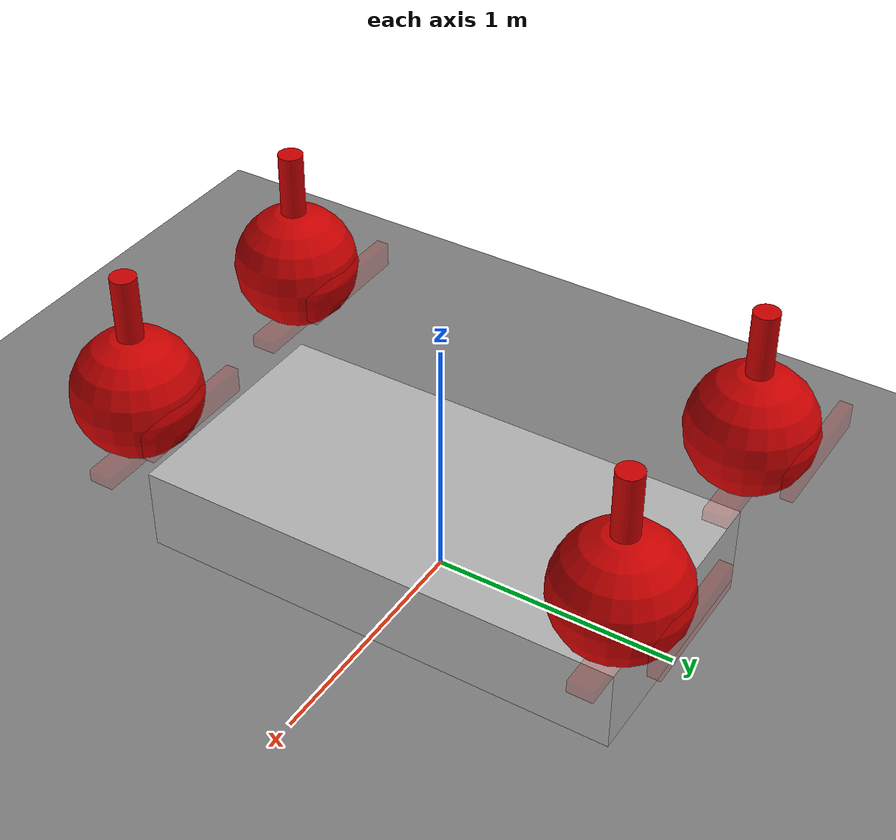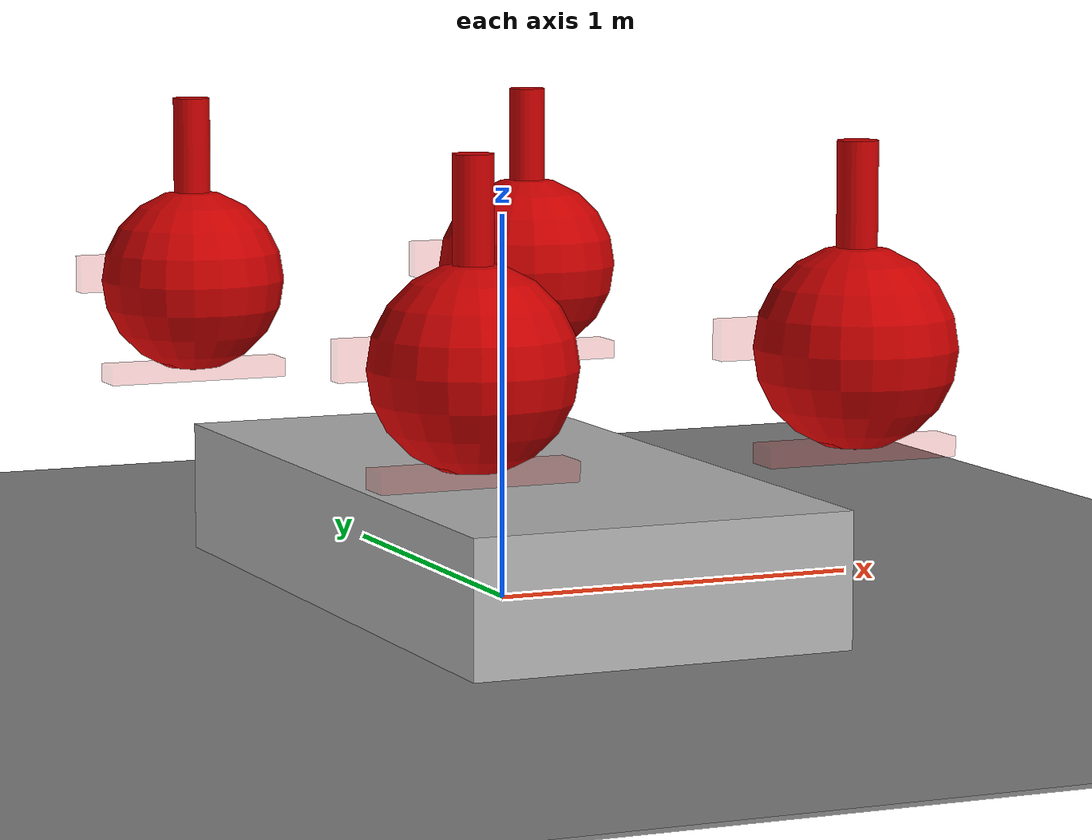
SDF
<?xml version="1.0" ?>
<sdf version="1.10">
  <model name="subpar_drone">
    <pose>0 0 0 0 0 0</pose>

    <include>
      <uri>file:///workspaces/TI-S4-Subpar/subpar/simulator/models/ground_plane.sdf</uri>
      <name>ground</name>
      <pose>0 0 0 0 0 0</pose>
    </include>
    <include>
      <uri>file:///workspaces/TI-S4-Subpar/subpar/simulator/models/subpar_drone/motors/motor_module_1.sdf</uri>
      <name>motor_module_1</name>
      <pose>0.5 1 0.5 0 0 0</pose>
    </include>

    <include>
      <uri>file:///workspaces/TI-S4-Subpar/subpar/simulator/models/subpar_drone/motors/motor_module_2.sdf</uri>
      <name>motor_module_2</name>
      <pose>-0.5 1 0.5 0 0 0</pose>
    </include>

    <include>
      <uri>file:///workspaces/TI-S4-Subpar/subpar/simulator/models/subpar_drone/motors/motor_module_3.sdf</uri>
      <name>motor_module_3</name>
      <pose>0.5 -1 0.5 0 0 0</pose>
    </include>

    <include>
      <uri>file:///workspaces/TI-S4-Subpar/subpar/simulator/models/subpar_drone/motors/motor_module_4.sdf</uri>
      <name>motor_module_4</name>
      <pose>-0.5 -1 0.5 0 0 0</pose>
    </include>

    <include>
      <uri>file:///workspaces/TI-S4-Subpar/subpar/simulator/models/subpar_drone/body.sdf</uri>
      <name>body</name>
      <pose>0 0 .1 0 0 0</pose>
    </include>

    <joint name="motor_joint_1" type="fixed">
        <pose>0 0 0 0 0 0</pose>
        <parent>body</parent>
        <child>motor_module_1</child>
      </joint>

    <joint name="motor_joint_j2" type="fixed">
        <pose>0 0 0 0 0 0</pose>
        <parent>body</parent>
        <child>motor_module_2</child>
      </joint>

    <joint name="motor_joint_j3" type="fixed">
        <pose>0 0 0 0 0 0</pose>
        <parent>body</parent>
        <child>motor_module_3</child>
      </joint>

    <joint name="motor_joint_j4" type="fixed">
        <pose>0 0 0 0 0 0</pose>
        <parent>body</parent>
        <child>motor_module_4</child>
      </joint>
<plugin name="subpar::SubparPublisherPlugin" filename="/workspaces/TI-S4-Subpar/subpar/simulator/build/libSubparDronePlugin.so"/>
<plugin filename="gz-sim-imu-system"
        name="gz::sim::systems::Imu">
</plugin>
  </model>
</sdf>

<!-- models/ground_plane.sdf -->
<sdf version="1.10">
  <model name="ground_plane">
    <static>true</static>

    <link name="ground_link">
      <pose>0 0 0 0 0 0</pose>

      <!-- Visueel vlak -->
      <visual name="ground_visual">
        <geometry>
          <box>
            <size>100 100 0.01</size> <!-- groot maar dun -->
          </box>
        </geometry>
        <material>
          <ambient>0.3 0.3 0.3 1</ambient>
          <diffuse>0.5 0.5 0.5 1</diffuse>
        </material>
      </visual>

      <!-- Botsing voor fysica -->
      <collision name="ground_collision">
        <geometry>
          <box>
            <size>100 100 0.01</size>
          </box>
        </geometry>
        <surface>
          <friction>
            <ode>
              <mu>1.0</mu>
              <mu2>1.0</mu2>
            </ode>
          </friction>
        </surface>
      </collision>

      <!-- Massa en inertie irrelevant voor statisch vlak -->
      <inertial>
        <mass>1.0</mass>
      </inertial>
    </link>
  </model>
</sdf>

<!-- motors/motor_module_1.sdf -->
<sdf version="1.10">
    <model name="motor_module_1">
      <pose>0 0 0 0 0 0</pose>

        <link name="motor_module_1_base">
          <pose>0.0 0.0 0.0 0 0 0</pose>
          <inertial>
            <inertia>
              <ixx>2.501</ixx>
              <ixy>0</ixy>
              <ixz>0</ixz>
              <iyy>2.501</iyy>
              <iyz>0</iyz>
              <izz>5</izz>
            </inertia>
            <mass>0.1</mass>
          </inertial>
          <collision name="base_collision">
            <pose>0.0 0.0 0.0 0 0 0</pose>
            <geometry>
              <box>
                <size>0.5 0.5 0.01</size>
              </box>
            </geometry>
          </collision>
        </link>

        <link name="motor_module_1_pitch_rotor">
          <pose>0.0 0.0 0 0 0 0</pose>
          <inertial>
            <inertia>
              <ixx>0.032</ixx>
              <ixy>0</ixy>
              <ixz>0</ixz>
              <iyy>0.032</iyy>
              <iyz>0</iyz>
              <izz>0.00012</izz>
            </inertia>
            <mass>0.1</mass>
          </inertial>
          <visual name="visual">
            <geometry>
              <box>
                <size>0.5 0.1 0.05</size>
              </box>
            </geometry>
            <material>
              <ambient>0.2 0.8 0.2 1</ambient>
              <diffuse>0.8 0 0 1</diffuse>
            </material>
            <transparency>0.9</transparency>
          </visual>
          <collision name="collision">
            <geometry>
              <box>
                <size>0.5 0.1 0.05</size>
              </box>
            </geometry>
          </collision>
        </link>

        <link name="motor_module_1_yaw_rotor">
          <pose>0 0.25 0.25 1.5708 0 0</pose>
            <inertial>
              <mass>0.1</mass>
              <inertia>
                <ixx>0.05</ixx>
                <iyy>0.05</iyy>
                <izz>0.05</izz>
                <ixy>0</ixy><ixz>0</ixz><iyz>0</iyz>
              </inertia>
            </inertial>
          <visual name="visual">
          <geometry>
            <box>
              <size>0.5 0.1 0.05</size>
            </box>
          </geometry>
          <material>
            <ambient>0.2 0.8 0.2 1</ambient>
              <diffuse>0.8 0 0 1</diffuse>
            </material>
            <transparency>0.9</transparency>
          </visual>
          <collision name="collision_2">
            <geometry>
              <box>
                <size>0.5 0.1 0.05</size>
              </box>
            </geometry>
          </collision>
        </link>

        <link name="motor_module_1_thruster">
          <pose>0 0 0.25 0 0 0</pose>
            <inertial>
              <mass>0.1</mass>
              <inertia>
                <ixx>0.05</ixx>
                <iyy>0.05</iyy>
                <izz>0.05</izz>
                <ixy>0</ixy><ixz>0</ixz><iyz>0</iyz>
              </inertia>
            </inertial>
          <visual name="visual">
          <geometry>
            <sphere>
              <radius>0.25</radius>
            </sphere>
          </geometry>
          <material>
            <ambient>0.2 0.8 0.2 1</ambient>
            <diffuse>0.8 0 0 1</diffuse>
          </material>
          </visual>
          <collision name="collision_3">
            <geometry>
              <sphere>
                <radius>0.25</radius>
              </sphere>
            </geometry>
          </collision>
        </link>

        <link name="motor_module_1_thruster_direction_marker">
          <pose>0 0 0.5 0 0 0</pose>
            <inertial>
              <mass>0.1</mass>
              <inertia>
                <ixx>0.05</ixx>
                <iyy>0.05</iyy>
                <izz>0.05</izz>
                <ixy>0</ixy><ixz>0</ixz><iyz>0</iyz>
              </inertia>
            </inertial>
          <visual name="visual">
            <geometry>
              <cylinder>
                <radius>0.05</radius>
                <length>0.5</length>
              </cylinder>
            </geometry>
            <material>
              <ambient>0.2 0.8 0.2 1</ambient>
              <diffuse>0.8 0 0 1</diffuse>
            </material>
          </visual>
          <collision name="collision_4">
            <geometry>
              <cylinder>
                <radius>0.05</radius>
                <length>0.5</length>
              </cylinder>
            </geometry>
          </collision>
        </link>

        <joint name="motor_module_1_joint_1" type="revolute">
          <pose>0 0 0 0 0 0</pose>
          <parent>motor_module_1_base</parent>
          <child>motor_module_1_pitch_rotor</child>
          <axis>
            <xyz>0 0 1</xyz>
          </axis>
        </joint>

        <joint name="motor_module_1_joint_2" type="revolute">
          <pose>0 0 0 0 0 0</pose>
          <parent>motor_module_1_pitch_rotor</parent>
          <child>motor_module_1_yaw_rotor</child>
          <axis>
            <xyz> 0 0 1</xyz>
          </axis>
        </joint>

        <joint name="motor_module_1_joint_3" type="revolute">
          <pose>0 0 0 0 0 0</pose>
          <parent>motor_module_1_yaw_rotor</parent>
          <child>motor_module_1_thruster</child>
                    <axis>
      <xyz>0 0 -1</xyz>
    </axis>
        </joint>

        <joint name="motor_module_1_joint_4" type="revolute">
          <pose>0 0 0 0 0 0</pose>
          <parent>motor_module_1_thruster</parent>
          <child>motor_module_1_thruster_direction_marker</child>
          <axis>
      <xyz>0 0 -1</xyz>
    </axis>

        </joint>

        <plugin
          filename="gz-sim-joint-position-controller-system"
          name="gz::sim::systems::JointPositionController">
          <joint_name>motor_module_1_joint_1</joint_name>
          <topic>motor_module_1_joint_1</topic>
          <p_gain>1</p_gain>
          <i_gain>0.1</i_gain>
          <d_gain>0.5</d_gain>
          <i_max>1</i_max>
          <i_min>-1</i_min>
          <cmd_max>1000</cmd_max>
          <cmd_min>-1000</cmd_min>
        </plugin>

        <plugin
          filename="gz-sim-joint-position-controller-system"
          name="gz::sim::systems::JointPositionController">
          <joint_name>motor_module_1_joint_2</joint_name>
          <topic>motor_module_1_joint_2</topic>
          <p_gain>1</p_gain>
          <i_gain>0.1</i_gain>
          <d_gain>0.5</d_gain>
          <i_max>1</i_max>
          <i_min>-1</i_min>
          <cmd_max>1000</cmd_max>
          <cmd_min>-1000</cmd_min>
        </plugin>

<plugin
  filename="gz-sim-thruster-system"
  name="gz::sim::systems::Thruster">
  <namespace>motor_1_thruster</namespace>  <!-- Change number for each module -->
  <joint_name>motor_module_1_joint_4</joint_name>  <!-- Change number for each module -->
  <use_angvel_cmd>false</use_angvel_cmd>
  <input_topic>/model/motor_1_thruster/joint/motor_module_1_joint_4/cmd_thrust</input_topic>  <!-- ADD THIS LINE -->
  <thrust_coefficient>1</thrust_coefficient>
  <fluid_density>1000</fluid_density>
  <propeller_diameter>0.2</propeller_diameter>
</plugin>
    </model>
  </sdf>

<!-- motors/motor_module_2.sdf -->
<sdf version="1.10">
  <model name="motor_module_2">
    <pose>0 0 0 0 0 0</pose>

      <link name="motor_module_2_base">
        <pose>0.0 0.0 0.0 0 0 0</pose>
        <inertial>
          <inertia>
            <ixx>2.501</ixx>
            <ixy>0</ixy>
            <ixz>0</ixz>
            <iyy>2.501</iyy>
            <iyz>0</iyz>
            <izz>5</izz>
          </inertia>
          <mass>0.1</mass>
        </inertial>
        <collision name="base_collision">
          <pose>0.0 0.0 0.0 0 0 0</pose>
          <geometry>
            <box>
              <size>0.5 0.5 0.01</size>
            </box>
          </geometry>
        </collision>
      </link>

      <link name="motor_module_2_pitch_rotor">
        <pose>0.0 0.0 0 0 0 0</pose>
        <inertial>
          <inertia>
            <ixx>0.032</ixx>
            <ixy>0</ixy>
            <ixz>0</ixz>
            <iyy>0.032</iyy>
            <iyz>0</iyz>
            <izz>0.00012</izz>
          </inertia>
          <mass>0.1</mass>
        </inertial>
        <visual name="visual">
          <geometry>
            <box>
              <size>0.5 0.1 0.05</size>
            </box>
          </geometry>
          <material>
            <ambient>0.2 0.8 0.2 1</ambient>
            <diffuse>0.8 0 0 1</diffuse>
          </material>
          <transparency>0.9</transparency>
        </visual>
        <collision name="collision">
          <geometry>
            <box>
              <size>0.5 0.1 0.05</size>
            </box>
          </geometry>
        </collision>
      </link>

      <link name="motor_module_2_yaw_rotor">
        <pose>0 0.25 0.25 1.5708 0 0</pose>
          <inertial>
            <mass>0.1</mass>
            <inertia>
              <ixx>0.05</ixx>
              <iyy>0.05</iyy>
              <izz>0.05</izz>
              <ixy>0</ixy><ixz>0</ixz><iyz>0</iyz>
            </inertia>
          </inertial>
        <visual name="visual">
        <geometry>
          <box>
            <size>0.5 0.1 0.05</size>
          </box>
        </geometry>
        <material>
          <ambient>0.2 0.8 0.2 1</ambient>
            <diffuse>0.8 0 0 1</diffuse>
          </material>
          <transparency>0.9</transparency>
        </visual>
        <collision name="collision_2">
          <geometry>
            <box>
              <size>0.5 0.1 0.05</size>
            </box>
          </geometry>
        </collision>
      </link>

      <link name="motor_module_2_thruster">
        <pose>0 0 0.25 0 0 0</pose>
          <inertial>
            <mass>0.1</mass>
            <inertia>
              <ixx>0.05</ixx>
              <iyy>0.05</iyy>
              <izz>0.05</izz>
              <ixy>0</ixy><ixz>0</ixz><iyz>0</iyz>
            </inertia>
          </inertial>
        <visual name="visual">
        <geometry>
          <sphere>
            <radius>0.25</radius>
          </sphere>
        </geometry>
        <material>
          <ambient>0.2 0.8 0.2 1</ambient>
          <diffuse>0.8 0 0 1</diffuse>
        </material>
        </visual>
        <collision name="collision_3">
          <geometry>
            <sphere>
              <radius>0.25</radius>
            </sphere>
          </geometry>
        </collision>
      </link>

      <link name="motor_module_2_thruster_direction_marker">
        <pose>0 0 0.5 0 0 0</pose>
          <inertial>
            <mass>0.1</mass>
            <inertia>
              <ixx>0.05</ixx>
              <iyy>0.05</iyy>
              <izz>0.05</izz>
              <ixy>0</ixy><ixz>0</ixz><iyz>0</iyz>
            </inertia>
          </inertial>
        <visual name="visual">
          <geometry>
            <cylinder>
              <radius>0.05</radius>
              <length>0.5</length>
            </cylinder>
          </geometry>
          <material>
            <ambient>0.2 0.8 0.2 1</ambient>
            <diffuse>0.8 0 0 1</diffuse>
          </material>
        </visual>
        <collision name="collision_4">
          <geometry>
            <cylinder>
              <radius>0.05</radius>
              <length>0.5</length>
            </cylinder>
          </geometry>
        </collision>
      </link>

      <joint name="motor_module_2_joint_1" type="revolute">
        <pose>0 0 0 0 0 0</pose>
        <parent>motor_module_2_base</parent>
        <child>motor_module_2_pitch_rotor</child>
        <axis>
          <xyz>0 0 1</xyz>
        </axis>
      </joint>

      <joint name="motor_module_2_joint_2" type="revolute">
        <pose>0 0 0 0 0 0</pose>
        <parent>motor_module_2_pitch_rotor</parent>
        <child>motor_module_2_yaw_rotor</child>
        <axis>
          <xyz> 0 0 1</xyz>
        </axis>
      </joint>

      <joint name="motor_module_2_joint_3" type="fixed">
        <pose>0 0 0 0 0 0</pose>
        <parent>motor_module_2_yaw_rotor</parent>
        <child>motor_module_2_thruster</child>
      </joint>

      <joint name="motor_module_2_joint_4" type="revolute">
        <pose>0 0 0 0 0 0</pose>
        <parent>motor_module_2_thruster</parent>
        <child>motor_module_2_thruster_direction_marker</child>
        <axis>
    <xyz>0 0 -1</xyz>
    <limit>
      <lower>-1e16</lower>
      <upper>1e16</upper>
      <effort>1000</effort>
      <velocity>100</velocity>
    </limit>
  </axis>

      </joint>

      <plugin
        filename="gz-sim-joint-position-controller-system"
        name="gz::sim::systems::JointPositionController">
        <joint_name>motor_module_2_joint_1</joint_name>
        <topic>motor_module_2_joint_1</topic>
        <p_gain>1</p_gain>
        <i_gain>0.1</i_gain>
        <d_gain>0.5</d_gain>
        <i_max>1</i_max>
        <i_min>-1</i_min>
        <cmd_max>1000</cmd_max>
        <cmd_min>-1000</cmd_min>
      </plugin>

      <plugin
        filename="gz-sim-joint-position-controller-system"
        name="gz::sim::systems::JointPositionController">
        <joint_name>motor_module_2_joint_2</joint_name>
        <topic>motor_module_2_joint_2</topic>
        <p_gain>1</p_gain>
        <i_gain>0.1</i_gain>
        <d_gain>0.5</d_gain>
        <i_max>1</i_max>
        <i_min>-1</i_min>
        <cmd_max>1000</cmd_max>
        <cmd_min>-1000</cmd_min>
      </plugin>

<plugin
  filename="gz-sim-thruster-system"
  name="gz::sim::systems::Thruster">
  <namespace>motor_2_thruster</namespace>  <!-- Change number for each module -->
  <joint_name>motor_module_2_joint_4</joint_name>  <!-- Change number for each module -->
  <use_angvel_cmd>false</use_angvel_cmd>
  <input_topic>/model/motor_2_thruster/joint/motor_module_2_joint_4/cmd_thrust</input_topic>  <!-- ADD THIS LINE -->
  <thrust_coefficient>1</thrust_coefficient>
  <fluid_density>1000</fluid_density>
  <propeller_diameter>0.2</propeller_diameter>
</plugin>
  </model>
</sdf>

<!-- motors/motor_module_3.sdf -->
<sdf version="1.10">
  <model name="motor_module_3">
    <pose>0 0 0 0 0 0</pose>

      <link name="motor_module_3_base">
        <pose>0.0 0.0 0.0 0 0 0</pose>
        <inertial>
          <inertia>
            <ixx>2.501</ixx>
            <ixy>0</ixy>
            <ixz>0</ixz>
            <iyy>2.501</iyy>
            <iyz>0</iyz>
            <izz>5</izz>
          </inertia>
          <mass>0.1</mass>
        </inertial>
        <collision name="base_collision">
          <pose>0.0 0.0 0.0 0 0 0</pose>
          <geometry>
            <box>
              <size>0.5 0.5 0.01</size>
            </box>
          </geometry>
        </collision>
      </link>

      <link name="motor_module_3_pitch_rotor">
        <pose>0.0 0.0 0 0 0 0</pose>
        <inertial>
          <inertia>
            <ixx>0.032</ixx>
            <ixy>0</ixy>
            <ixz>0</ixz>
            <iyy>0.032</iyy>
            <iyz>0</iyz>
            <izz>0.00012</izz>
          </inertia>
          <mass>0.1</mass>
        </inertial>
        <visual name="visual">
          <geometry>
            <box>
              <size>0.5 0.1 0.05</size>
            </box>
          </geometry>
          <material>
            <ambient>0.2 0.8 0.2 1</ambient>
            <diffuse>0.8 0 0 1</diffuse>
          </material>
          <transparency>0.9</transparency>
        </visual>
        <collision name="collision">
          <geometry>
            <box>
              <size>0.5 0.1 0.05</size>
            </box>
          </geometry>
        </collision>
      </link>

      <link name="motor_module_3_yaw_rotor">
        <pose>0 0.25 0.25 1.5708 0 0</pose>
          <inertial>
            <mass>0.1</mass>
            <inertia>
              <ixx>0.05</ixx>
              <iyy>0.05</iyy>
              <izz>0.05</izz>
              <ixy>0</ixy><ixz>0</ixz><iyz>0</iyz>
            </inertia>
          </inertial>
        <visual name="visual">
        <geometry>
          <box>
            <size>0.5 0.1 0.05</size>
          </box>
        </geometry>
        <material>
          <ambient>0.2 0.8 0.2 1</ambient>
            <diffuse>0.8 0 0 1</diffuse>
          </material>
          <transparency>0.9</transparency>
        </visual>
        <collision name="collision_2">
          <geometry>
            <box>
              <size>0.5 0.1 0.05</size>
            </box>
          </geometry>
        </collision>
      </link>

      <link name="motor_module_3_thruster">
        <pose>0 0 0.25 0 0 0</pose>
          <inertial>
            <mass>0.1</mass>
            <inertia>
              <ixx>0.05</ixx>
              <iyy>0.05</iyy>
              <izz>0.05</izz>
              <ixy>0</ixy><ixz>0</ixz><iyz>0</iyz>
            </inertia>
          </inertial>
        <visual name="visual">
        <geometry>
          <sphere>
            <radius>0.25</radius>
          </sphere>
        </geometry>
        <material>
          <ambient>0.2 0.8 0.2 1</ambient>
          <diffuse>0.8 0 0 1</diffuse>
        </material>
        </visual>
        <collision name="collision_3">
          <geometry>
            <sphere>
              <radius>0.25</radius>
            </sphere>
          </geometry>
        </collision>
      </link>

      <link name="motor_module_3_thruster_direction_marker">
        <pose>0 0 0.5 0 0 0</pose>
          <inertial>
            <mass>0.1</mass>
            <inertia>
              <ixx>0.05</ixx>
              <iyy>0.05</iyy>
              <izz>0.05</izz>
              <ixy>0</ixy><ixz>0</ixz><iyz>0</iyz>
            </inertia>
          </inertial>
        <visual name="visual">
          <geometry>
            <cylinder>
              <radius>0.05</radius>
              <length>0.5</length>
            </cylinder>
          </geometry>
          <material>
            <ambient>0.2 0.8 0.2 1</ambient>
            <diffuse>0.8 0 0 1</diffuse>
          </material>
        </visual>
        <collision name="collision_4">
          <geometry>
            <cylinder>
              <radius>0.05</radius>
              <length>0.5</length>
            </cylinder>
          </geometry>
        </collision>
      </link>

      <joint name="motor_module_3_joint_1" type="revolute">
        <pose>0 0 0 0 0 0</pose>
        <parent>motor_module_3_base</parent>
        <child>motor_module_3_pitch_rotor</child>
        <axis>
          <xyz>0 0 1</xyz>
        </axis>
      </joint>

      <joint name="motor_module_3_joint_2" type="revolute">
        <pose>0 0 0 0 0 0</pose>
        <parent>motor_module_3_pitch_rotor</parent>
        <child>motor_module_3_yaw_rotor</child>
        <axis>
          <xyz> 0 0 1</xyz>
        </axis>
      </joint>

      <joint name="motor_module_3_joint_3" type="fixed">
        <pose>0 0 0 0 0 0</pose>
        <parent>motor_module_3_yaw_rotor</parent>
        <child>motor_module_3_thruster</child>
      </joint>

      <joint name="motor_module_3_joint_4" type="revolute">
        <pose>0 0 0 0 0 0</pose>
        <parent>motor_module_3_thruster</parent>
        <child>motor_module_3_thruster_direction_marker</child>
        <axis>
    <xyz>0 0 -1</xyz>
    <limit>
      <lower>-1e16</lower>
      <upper>1e16</upper>
      <effort>1000</effort>
      <velocity>100</velocity>
    </limit>
  </axis>

      </joint>

      <plugin
        filename="gz-sim-joint-position-controller-system"
        name="gz::sim::systems::JointPositionController">
        <joint_name>motor_module_3_joint_1</joint_name>
        <topic>motor_module_3_joint_1</topic>
        <p_gain>1</p_gain>
        <i_gain>0.1</i_gain>
        <d_gain>0.5</d_gain>
        <i_max>1</i_max>
        <i_min>-1</i_min>
        <cmd_max>1000</cmd_max>
        <cmd_min>-1000</cmd_min>
      </plugin>

      <plugin
        filename="gz-sim-joint-position-controller-system"
        name="gz::sim::systems::JointPositionController">
        <joint_name>motor_module_3_joint_2</joint_name>
        <topic>motor_module_3_joint_2</topic>
        <p_gain>1</p_gain>
        <i_gain>0.1</i_gain>
        <d_gain>0.5</d_gain>
        <i_max>1</i_max>
        <i_min>-1</i_min>
        <cmd_max>1000</cmd_max>
        <cmd_min>-1000</cmd_min>
      </plugin>

<plugin
  filename="gz-sim-thruster-system"
  name="gz::sim::systems::Thruster">
  <namespace>motor_3_thruster</namespace>  <!-- Change number for each module -->
  <joint_name>motor_module_3_joint_4</joint_name>  <!-- Change number for each module -->
  <use_angvel_cmd>false</use_angvel_cmd>
 <input_topic>/model/motor_3_thruster/joint/motor_module_3_joint_4/cmd_thrust</input_topic> <thrust_coefficient>1</thrust_coefficient>
  <fluid_density>1000</fluid_density>
  <propeller_diameter>0.2</propeller_diameter>
</plugin>
  </model>
</sdf>

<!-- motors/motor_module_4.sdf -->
<sdf version="1.10">
  <model name="motor_module_4">
    <pose>0 0 0 0 0 0</pose>

      <link name="motor_module_4_base">
        <pose>0.0 0.0 0.0 0 0 0</pose>
        <inertial>
          <inertia>
            <ixx>2.501</ixx>
            <ixy>0</ixy>
            <ixz>0</ixz>
            <iyy>2.501</iyy>
            <iyz>0</iyz>
            <izz>5</izz>
          </inertia>
          <mass>0.1</mass>
        </inertial>
        <collision name="base_collision">
          <pose>0.0 0.0 0.0 0 0 0</pose>
          <geometry>
            <box>
              <size>0.5 0.5 0.01</size>
            </box>
          </geometry>
        </collision>
      </link>

      <link name="motor_module_4_pitch_rotor">
        <pose>0.0 0.0 0 0 0 0</pose>
        <inertial>
          <inertia>
            <ixx>0.032</ixx>
            <ixy>0</ixy>
            <ixz>0</ixz>
            <iyy>0.032</iyy>
            <iyz>0</iyz>
            <izz>0.00012</izz>
          </inertia>
          <mass>0.1</mass>
        </inertial>
        <visual name="visual">
          <geometry>
            <box>
              <size>0.5 0.1 0.05</size>
            </box>
          </geometry>
          <material>
            <ambient>0.2 0.8 0.2 1</ambient>
            <diffuse>0.8 0 0 1</diffuse>
          </material>
          <transparency>0.9</transparency>
        </visual>
        <collision name="collision">
          <geometry>
            <box>
              <size>0.5 0.1 0.05</size>
            </box>
          </geometry>
        </collision>
      </link>

      <link name="motor_module_4_yaw_rotor">
        <pose>0 0.25 0.25 1.5708 0 0</pose>
          <inertial>
            <mass>0.1</mass>
            <inertia>
              <ixx>0.05</ixx>
              <iyy>0.05</iyy>
              <izz>0.05</izz>
              <ixy>0</ixy><ixz>0</ixz><iyz>0</iyz>
            </inertia>
          </inertial>
        <visual name="visual">
        <geometry>
          <box>
            <size>0.5 0.1 0.05</size>
          </box>
        </geometry>
        <material>
          <ambient>0.2 0.8 0.2 1</ambient>
            <diffuse>0.8 0 0 1</diffuse>
          </material>
          <transparency>0.9</transparency>
        </visual>
        <collision name="collision_2">
          <geometry>
            <box>
              <size>0.5 0.1 0.05</size>
            </box>
          </geometry>
        </collision>
      </link>

      <link name="motor_module_4_thruster">
        <pose>0 0 0.25 0 0 0</pose>
          <inertial>
            <mass>0.1</mass>
            <inertia>
              <ixx>0.05</ixx>
              <iyy>0.05</iyy>
              <izz>0.05</izz>
              <ixy>0</ixy><ixz>0</ixz><iyz>0</iyz>
            </inertia>
          </inertial>
        <visual name="visual">
        <geometry>
          <sphere>
            <radius>0.25</radius>
          </sphere>
        </geometry>
        <material>
          <ambient>0.2 0.8 0.2 1</ambient>
          <diffuse>0.8 0 0 1</diffuse>
        </material>
        </visual>
        <collision name="collision_3">
          <geometry>
            <sphere>
              <radius>0.25</radius>
            </sphere>
          </geometry>
        </collision>
      </link>

      <link name="motor_module_4_thruster_direction_marker">
        <pose>0 0 0.5 0 0 0</pose>
          <inertial>
            <mass>0.1</mass>
            <inertia>
              <ixx>0.05</ixx>
              <iyy>0.05</iyy>
              <izz>0.05</izz>
              <ixy>0</ixy><ixz>0</ixz><iyz>0</iyz>
            </inertia>
          </inertial>
        <visual name="visual">
          <geometry>
            <cylinder>
              <radius>0.05</radius>
              <length>0.5</length>
            </cylinder>
          </geometry>
          <material>
            <ambient>0.2 0.8 0.2 1</ambient>
            <diffuse>0.8 0 0 1</diffuse>
          </material>
        </visual>
        <collision name="collision_4">
          <geometry>
            <cylinder>
              <radius>0.05</radius>
              <length>0.5</length>
            </cylinder>
          </geometry>
        </collision>
      </link>

      <joint name="motor_module_4_joint_1" type="revolute">
        <pose>0 0 0 0 0 0</pose>
        <parent>motor_module_4_base</parent>
        <child>motor_module_4_pitch_rotor</child>
        <axis>
          <xyz>0 0 1</xyz>
        </axis>
      </joint>

      <joint name="motor_module_4_joint_2" type="revolute">
        <pose>0 0 0 0 0 0</pose>
        <parent>motor_module_4_pitch_rotor</parent>
        <child>motor_module_4_yaw_rotor</child>
        <axis>
          <xyz> 0 0 1</xyz>
        </axis>
      </joint>

      <joint name="motor_module_4_joint_3" type="fixed">
        <pose>0 0 0 0 0 0</pose>
        <parent>motor_module_4_yaw_rotor</parent>
        <child>motor_module_4_thruster</child>
      </joint>

      <joint name="motor_module_4_joint_4" type="revolute">
        <pose>0 0 0 0 0 0</pose>
        <parent>motor_module_4_thruster</parent>
        <child>motor_module_4_thruster_direction_marker</child>
        <axis>
    <xyz>0 0 -1</xyz>
    <limit>
      <lower>-1e16</lower>
      <upper>1e16</upper>
      <effort>1000</effort>
      <velocity>100</velocity>
    </limit>
  </axis>

      </joint>

      <plugin
        filename="gz-sim-joint-position-controller-system"
        name="gz::sim::systems::JointPositionController">
        <joint_name>motor_module_4_joint_1</joint_name>
        <topic>motor_module_4_joint_1</topic>
        <p_gain>1</p_gain>
        <i_gain>0.1</i_gain>
        <d_gain>0.5</d_gain>
        <i_max>1</i_max>
        <i_min>-1</i_min>
        <cmd_max>1000</cmd_max>
        <cmd_min>-1000</cmd_min>
      </plugin>

      <plugin
        filename="gz-sim-joint-position-controller-system"
        name="gz::sim::systems::JointPositionController">
        <joint_name>motor_module_4_joint_2</joint_name>
        <topic>motor_module_4_joint_2</topic>
        <p_gain>1</p_gain>
        <i_gain>0.1</i_gain>
        <d_gain>0.5</d_gain>
        <i_max>1</i_max>
        <i_min>-1</i_min>
        <cmd_max>1000</cmd_max>
        <cmd_min>-1000</cmd_min>
      </plugin>

<plugin
  filename="gz-sim-thruster-system"
  name="gz::sim::systems::Thruster">
  <namespace>motor_4_thruster</namespace>  <!-- Change number for each module -->
  <joint_name>motor_module_4_joint_4</joint_name>  <!-- Change number for each module -->
  <use_angvel_cmd>false</use_angvel_cmd>
<input_topic>/model/motor_4_thruster/joint/motor_module_4_joint_4/cmd_thrust</input_topic> <thrust_coefficient>1</thrust_coefficient>
  <fluid_density>1000</fluid_density>
  <propeller_diameter>0.2</propeller_diameter>
</plugin>
  </model>
</sdf>

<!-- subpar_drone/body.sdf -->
<sdf version="1.10">
  <model name="body">
    <pose>0 0 0 0 0 0</pose>

    <link name="base_link">
      <pose>0 0 0 0 0 0</pose>

      <!-- Visuele representatie -->
      <visual name="body_visual">
        <geometry>
          <box>
            <size>1 2 0.5</size>
          </box>
        </geometry>
        <material>
          <ambient>0.5 0.5 0.5 1</ambient>
          <diffuse>0.7 0.7 0.7 1</diffuse>
        </material>
      </visual>

      <!-- Botsing -->
      <collision name="body_collision">
        <geometry>
          <box>
            <size>2 4 1</size>
          </box>
        </geometry>
      </collision>

      <!-- Massa en traagheid -->
      <inertial>
        <mass>1.0</mass>
      </inertial>

      <!-- Front camera sensor -->
      <sensor name="front_camera" type="camera">
        <!-- Positie: 0.6m voor de body, 0.25m boven de basis -->
        <pose>0.6 0 0.25 0 0 0</pose>
        <camera>
          <horizontal_fov>1.047</horizontal_fov>
          <image>
            <width>640</width>
            <height>480</height>
          </image>
          <clip>
            <near>0.1</near>
            <far>100</far>
          </clip>
        </camera>
        <always_on>1</always_on>
        <update_rate>1</update_rate>
        <visualize>true</visualize>
        <topic>front_camera</topic>
      </sensor>

    <sensor name="imu_sensor" type="imu">
      <always_on>1</always_on>
      <update_rate>1</update_rate>
      <visualize>true</visualize>
      <topic>/imu</topic>
      <plugin filename="gz-sensors9-system" name="gz::sensors::systems::Sensors"/>
      <!-- Noise model -->
      <imu>
        <angular_velocity>
          <noise>
            <type>gaussian</type>
            <mean>0.0</mean>
            <stddev>0.001</stddev>    <!-- pas aan voor meer/minder ruis -->
          </noise>
        </angular_velocity>
        <linear_acceleration>
          <noise>
            <type>gaussian</type>
            <mean>0.0</mean>
            <stddev>0.1</stddev>
          </noise>
        </linear_acceleration>
      </imu>
    </sensor>

    </link>
  </model>
</sdf>
